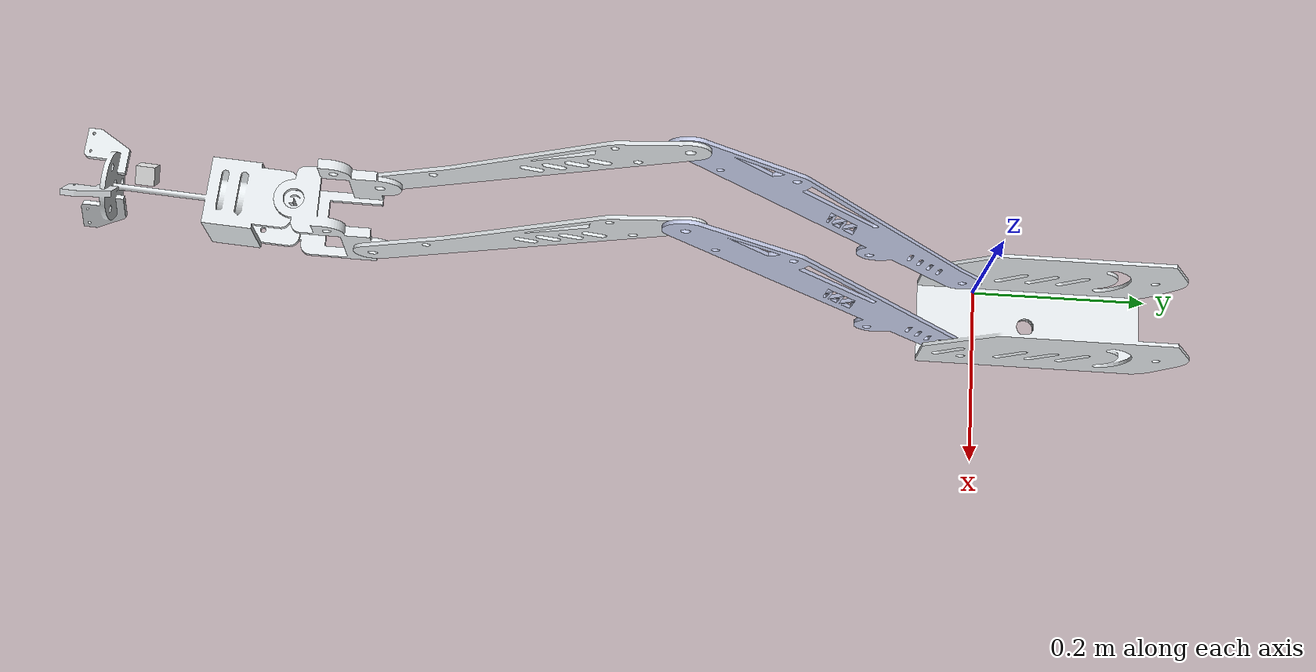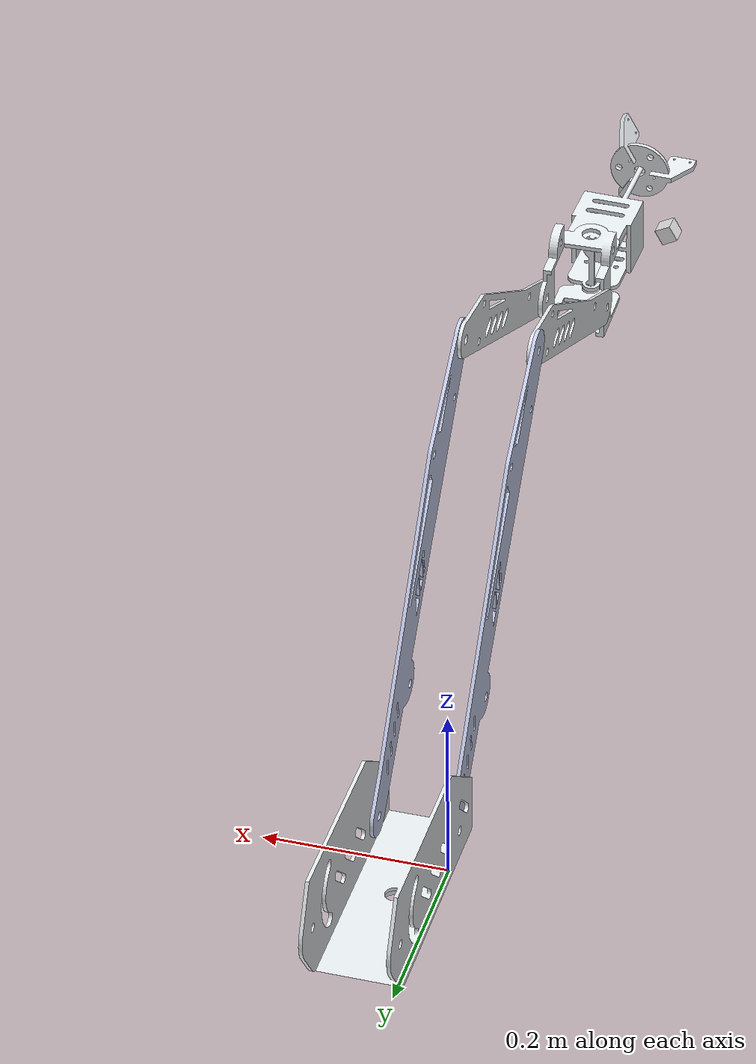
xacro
<robot
  name="rover_arm_description">
  <link
    name="base_to_rover">
    <inertial>
      <origin
        xyz="0.04 0.0025 -0.06"
        rpy="1 0 0" />
      <mass
        value="0.12926" />
      <inertia
        ixx="0.00015799"
        ixy="9.3247E-24"
        ixz="-2.3244E-21"
        iyy="0.00022782"
        iyz="6.1948E-23"
        izz="7.0371E-05" />
    </inertial>
    <visual>
      <origin
        xyz="0 0 0"
        rpy="0 0 0" />
      <geometry>
        <mesh
          filename="package://rover_arm_description/meshes/base_to_rover.STL" />
      </geometry>
      <material
        name="">
        <color
          rgba="0.89804 0.91765 0.92941 1" />
      </material>
    </visual>
    <collision>
      <origin
        xyz="0 0 0"
        rpy="0 0 0" />
      <geometry>
        <mesh
          filename="package://rover_arm_description/meshes/base_to_rover.STL" />
      </geometry>
    </collision>
  </link>
  <link
    name="arm_base">
    <inertial>
      <origin
        xyz="-0.016925 -0.047257 1.6372E-05"
        rpy="0 0 0" />
      <mass
        value="0.94074" />
      <inertia
        ixx="0.0032103"
        ixy="-0.00052992"
        ixz="1.4658E-07"
        iyy="0.0073743"
        iyz="3.7017E-07"
        izz="0.0074499" />
    </inertial>
    <visual>
      <origin
        xyz="0 0 0"
        rpy="0 0 0" />
      <geometry>
        <mesh
          filename="package://rover_arm_description/meshes/arm_base.STL" />
      </geometry>
      <material
        name="">
        <color
          rgba="0.89804 0.91765 0.92941 1" />
      </material>
    </visual>
    <collision>
      <origin
        xyz="0 0 0"
        rpy="0 0 0" />
      <geometry>
        <mesh
          filename="package://rover_arm_description/meshes/arm_base.STL" />
      </geometry>
    </collision>
  </link>
  <joint
    name="base_joint"
    type="continuous">
    <origin
      xyz="0.04 0.06 0.0051"
      rpy="-1.5708 -6.123E-17 -1.5708" />
    <parent
      link="base_to_rover" />
    <child
      link="arm_base" />
    <axis
      xyz="0 -1 0" />
  </joint>
  <link
    name="shoulder_link">
    <inertial>
      <origin
        xyz="0.25465 0.0033553 1.7347E-16"
        rpy="0 0 0" />
      <mass
        value="0.21923" />
      <inertia
        ixx="0.00043865"
        ixy="-7.4422E-05"
        ixz="-1.288E-18"
        iyy="0.0053043"
        iyz="1.0708E-18"
        izz="0.0050053" />
    </inertial>
    <visual>
      <origin
        xyz="0 0 0"
        rpy="0 0 0" />
      <geometry>
        <mesh
          filename="package://rover_arm_description/meshes/shoulder_link.STL" />
      </geometry>
      <material
        name="">
        <color
          rgba="0.79216 0.81961 0.93333 1" />
      </material>
    </visual>
    <collision>
      <origin
        xyz="0 0 0"
        rpy="0 0 0" />
      <geometry>
        <mesh
          filename="package://rover_arm_description/meshes/shoulder_link.STL" />
      </geometry>
    </collision>
  </link>
  <joint
    name="shoulder_joint"
    type="revolute">
    <limit
    	lower="-0.6"
    	upper="0.8"
    	effort="50"
    	velocity="50"
    	/>
    <origin
      xyz="0.078833 -0.035 0"
      rpy="3.1416 0 -0.87998" />
    <parent
      link="arm_base" />
    <child
      link="shoulder_link" />
    <axis
      xyz="0 0 -1" />
  </joint>
  <link
    name="elbow_link">
    <inertial>
      <origin
        xyz="0.16877 0.0033689 -5.1972E-15"
        rpy="0 0 0" />
      <mass
        value="0.36052" />
      <inertia
        ixx="0.00056775"
        ixy="8.4831E-05"
        ixz="-1.8064E-18"
        iyy="0.0048212"
        iyz="5.7786E-20"
        izz="0.0044009" />
    </inertial>
    <visual>
      <origin
        xyz="0 0 0"
        rpy="0 0 0" />
      <geometry>
        <mesh
          filename="package://rover_arm_description/meshes/elbow_link.STL" />
      </geometry>
      <material
        name="">
        <color
          rgba="0.89804 0.91765 0.92941 1" />
      </material>
    </visual>
    <collision>
      <origin
        xyz="0 0 0"
        rpy="0 0 0" />
      <geometry>
        <mesh
          filename="package://rover_arm_description/meshes/elbow_link.STL" />
      </geometry>
    </collision>
  </link>
  <joint
    name="elbow_joint"
    type="revolute">
    <limit
    	lower="-0.9"
    	upper="1.3"
    	effort="50"
    	velocity="50"
    	/>
    <origin
      xyz="0.5 0 0"
      rpy="0 6.9389E-16 -1.3124" />
    <parent
      link="shoulder_link" />
    <child
      link="elbow_link" />
    <axis
      xyz="0 0 -1" />
  </joint>
  <link
    name="rest_link">
    <inertial>
      <origin
        xyz="0.034923 -0.0067291 -1.9686E-05"
        rpy="0 0 0" />
      <mass
        value="0.20024" />
      <inertia
        ixx="0.00038951"
        ixy="1.1108E-05"
        ixz="-3.2693E-08"
        iyy="0.00033012"
        iyz="-2.4354E-08"
        izz="0.00039361" />
    </inertial>
    <visual>
      <origin
        xyz="0 0 0"
        rpy="0 0 0" />
      <geometry>
        <mesh
          filename="package://rover_arm_description/meshes/rest_link.STL" />
      </geometry>
      <material
        name="">
        <color
          rgba="0.89804 0.91765 0.92941 1" />
      </material>
    </visual>
    <collision>
      <origin
        xyz="0 0 0"
        rpy="0 0 0" />
      <geometry>
        <mesh
          filename="package://rover_arm_description/meshes/rest_link.STL" />
      </geometry>
    </collision>
  </link>
  <joint
    name="rest_joint"
    type="revolute">
    <limit
    	lower="-0.8"
    	upper="1.6"
    	effort="50"
    	velocity="50"
    	/>
    <origin
      xyz="0.35 0 0"
      rpy="-3.1416 8.2509E-17 0.49263" />
    <parent
      link="elbow_link" />
    <child
      link="rest_link" />
    <axis
      xyz="0 0 1" />
  </joint>
  <link
    name="twist_link">
    <inertial>
      <origin
        xyz="-0.052487 0.002038 8.8203E-05"
        rpy="0 0 0" />
      <mass
        value="0.30581" />
      <inertia
        ixx="0.0003103"
        ixy="-9.332E-07"
        ixz="2.0573E-07"
        iyy="0.000347"
        iyz="1.6219E-07"
        izz="0.00036455" />
    </inertial>
    <visual>
      <origin
        xyz="0 0 0"
        rpy="0 0 0" />
      <geometry>
        <mesh
          filename="package://rover_arm_description/meshes/twist_link.STL" />
      </geometry>
      <material
        name="">
        <color
          rgba="0.89804 0.91765 0.92941 1" />
      </material>
    </visual>
    <collision>
      <origin
        xyz="0 0 0"
        rpy="0 0 0" />
      <geometry>
        <mesh
          filename="package://rover_arm_description/meshes/twist_link.STL" />
      </geometry>
    </collision>
  </link>
  <joint
    name="twist_joint"
    type="revolute">
    <limit
    	lower="-1.45"
    	upper="1.45"
    	effort="50"
    	velocity="50"
    	/>
    <origin
      xyz="0.08 0 0"
      rpy="-3.1416 -0.050003 3.1416" />
    <parent
      link="rest_link" />
    <child
      link="twist_link" />
    <axis
      xyz="0 -1 0" />
  </joint>
  <link
    name="gripper_link">
    <inertial>
      <origin
        xyz="1.7576E-05 0.020833 3.0442E-05"
        rpy="0 0 0" />
      <mass
        value="0.11209" />
      <inertia
        ixx="7.8261E-05"
        ixy="-1.0719E-08"
        ixz="-1.2772E-07"
        iyy="0.00012632"
        iyz="-1.8565E-08"
        izz="7.8113E-05" />
    </inertial>
    <visual>
      <origin
        xyz="0 0 0"
        rpy="0 0 0" />
      <geometry>
        <mesh
          filename="package://rover_arm_description/meshes/gripper_link.STL" />
      </geometry>
      <material
        name="">
        <color
          rgba="0.89804 0.91765 0.92941 1" />
      </material>
    </visual>
    <collision>
      <origin
        xyz="0 0 0"
        rpy="0 0 0" />
      <geometry>
        <mesh
          filename="package://rover_arm_description/meshes/gripper_link.STL" />
      </geometry>
    </collision>
  </link>
  <joint
    name="gripper_joint"
    type="continuous">
    <origin
      xyz="-0.17704 0.00090857 0.00050796"
      rpy="1.5904E-15 -0.5103 1.5708" />
    <parent
      link="twist_link" />
    <child
      link="gripper_link" />
    <axis
      xyz="0 1 0" />
  </joint>
  <link name="grasping_frame">
    <inertial>
      <origin rpy="0 0 0" xyz="0 0 0"/>
      <mass value="0.0001"/>
      <cuboid_inertia mass="0.0001" x="0.001" y="0.001" z="0.001"/>
      <inertia ixx="1.0" ixy="0.0" ixz="0.0" iyy="100.0" iyz="0.0" izz="1.0"/>
    </inertial>
    <visual>
      <origin xyz="0 0 0"/>
      <geometry>
        <box size="0.02 0.02 0.02"/>
      </geometry>
      <material name="White"/>
    </visual>
  </link>
  <joint name="grasping_frame_joint" type="fixed">
    <parent link="gripper_link"/>
    <child link="grasping_frame"/>
    <origin rpy="0 0 0" xyz="0.08 0 0"/>
  </joint>
</robot>
